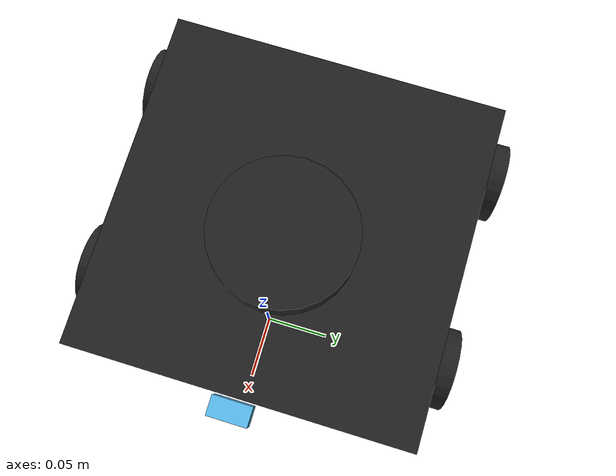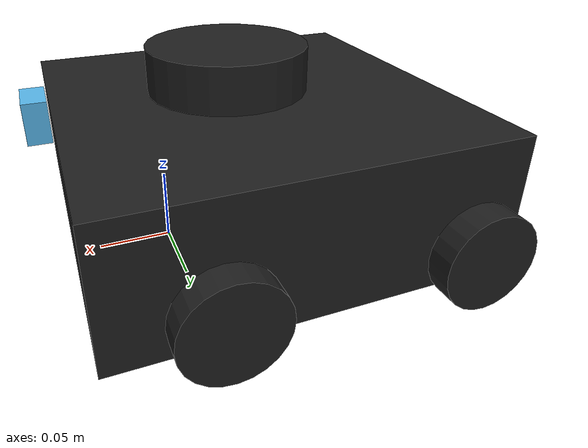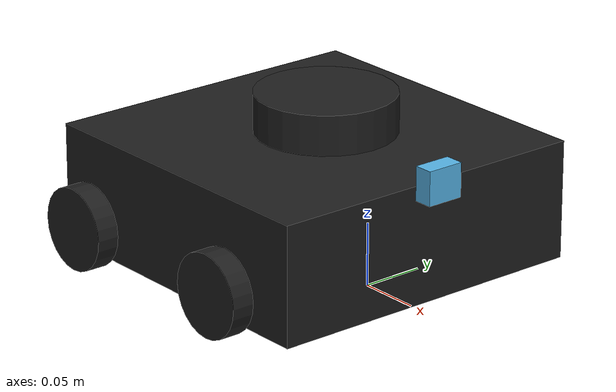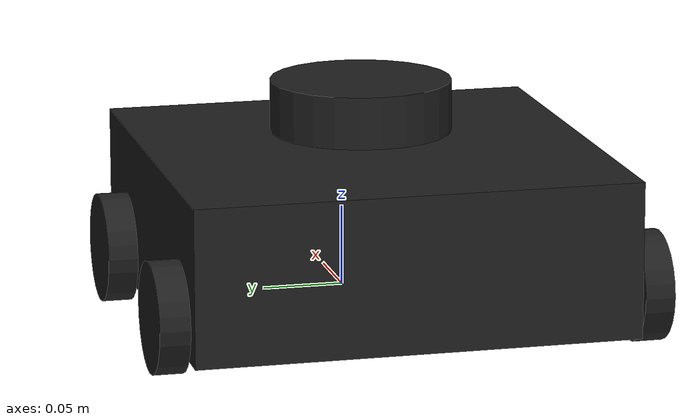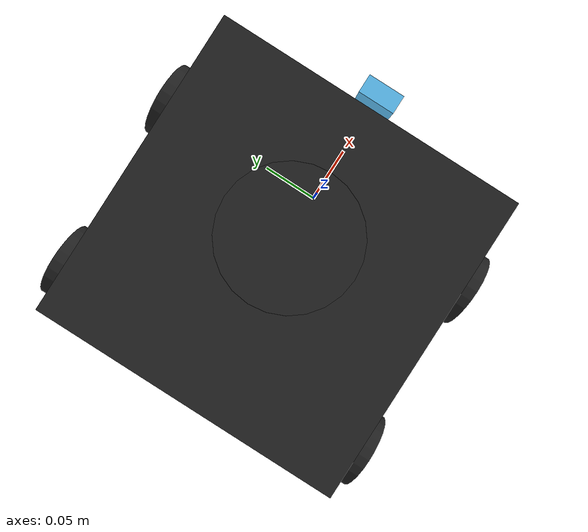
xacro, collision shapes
<?xml version="1.0" ?>

<robot name="turtlebot3_mecanum" xmlns:xacro="http://ros.org/wiki/xacro">

  <!-- Load Materials from file -->
  <xacro:include filename="$(find turtlebot3_mecanum_description)/urdf/common_properties.xacro"/>

  <!-- Load Gazebo properties -->
  <xacro:include filename="$(find turtlebot3_mecanum_description)/urdf/turtlebot3_mecanum.gazebo.xacro"/>

  <!-- Base Footprint -->
  <link name="base_footprint"/>

  <joint name="base_joint" type="fixed">
    <parent link="base_footprint"/>
    <child link="base_link" />
    <origin xyz="0 0 0.010" rpy="0 0 0"/>
  </joint>

  <!-- Base Link -->
  <link name="base_link">
    <visual>
      <origin xyz="-0.064 0 0.0" rpy="0 0 0"/>
      <geometry>
        <mesh filename="package://turtlebot3_mecanum_description/meshes/bases/waffle_pi_base.stl" scale="0.001 0.001 0.001"/>
      </geometry>
      <material name="light_black"/>
    </visual>
    <collision>
      <origin xyz="-0.064 0 0.047" rpy="0 0 0"/>
      <geometry>
        <box size="0.266 0.266 0.094"/>
      </geometry>
    </collision>
    <inertial>
      <origin xyz="0 0 0" rpy="0 0 0"/>
      <mass value="1.3729096e+00"/>
      <inertia  ixx="8.7002718e-03" ixy="-4.7576583e-05" ixz="1.1160499e-04"
                iyy="8.6195418e-03" iyz="-3.5422299e-06"
                izz="1.4612727e-02" />
    </inertial>
  </link>

  <!-- Center Link -->
  <joint name="center_joint" type="fixed">
    <parent link="base_link"/>
    <child link="center_link"/>
    <origin xyz="-0.082 0.0 0." rpy="0 0 0"/>
  </joint>
  <link name="center_link"/>

  <!-- LEFT FRONT Wheel -->
  <joint name="wheel_left_front_joint" type="continuous">
    <parent link="base_link"/>
    <child link="wheel_left_front_link"/>
    <origin xyz="0.0 0.144 0.023" rpy="-1.57 0 0"/>
    <axis xyz="0 0 1"/>
  </joint>

  <link name="wheel_left_front_link">
    <visual>
      <origin xyz="0 0 0" rpy="0.0 0 0"/>
      <geometry>
        <cylinder length="0.018" radius="0.033"/>
      </geometry>
      <material name="dark"/>
    </visual>
    <collision>
      <origin xyz="0 0 0" rpy="0 0 0"/>
      <geometry>
        <cylinder length="0.018" radius="0.033"/>
      </geometry>
    </collision>
    <inertial>
      <origin xyz="0 0 0" />
      <mass value="2.8498940e-02" />
      <inertia  ixx="1.1175580e-05" ixy="-4.2369783e-11" ixz="-5.9381719e-09"
                iyy="1.1192413e-05" iyz="-1.4400107e-11"
                izz="2.0712558e-05" />
      </inertial>
  </link>

  <!-- RIGHT FRONT Wheel -->
  <joint name="wheel_right_front_joint" type="continuous">
    <parent link="base_link"/>
    <child link="wheel_right_front_link"/>
    <origin xyz="0.0 -0.144 0.023" rpy="-1.57 0 0"/>
    <axis xyz="0 0 1"/>
  </joint>

  <link name="wheel_right_front_link">
    <visual>
      <origin xyz="0 0 0" rpy="0.0 0 0"/>
      <geometry>
        <cylinder length="0.018" radius="0.033"/>
      </geometry>
      <material name="dark"/>
    </visual>
    <collision>
      <origin xyz="0 0 0" rpy="0 0 0"/>
      <geometry>
        <cylinder length="0.018" radius="0.033"/>
      </geometry>
    </collision>
    <inertial>
      <origin xyz="0 0 0" />
      <mass value="2.8498940e-02" />
      <inertia  ixx="1.1175580e-05" ixy="-4.2369783e-11" ixz="-5.9381719e-09"
                iyy="1.1192413e-05" iyz="-1.4400107e-11"
                izz="2.0712558e-05" />
      </inertial>
  </link>

  <!-- LEFT BACK Wheel -->
  <joint name="wheel_left_rear_joint" type="continuous">
    <parent link="base_link"/>
    <child link="wheel_left_rear_link"/>
    <origin xyz="-0.163 0.144 0.023" rpy="-1.57 0 0"/>
    <axis xyz="0 0 1"/>
  </joint>

  <link name="wheel_left_rear_link">
    <visual>
      <origin xyz="0 0 0" rpy="0.0 0 0"/>
      <geometry>
        <cylinder length="0.018" radius="0.033"/>
      </geometry>
      <material name="dark"/>
    </visual>
    <collision>
      <origin xyz="0 0 0" rpy="0 0 0"/>
      <geometry>
        <cylinder length="0.018" radius="0.033"/>
      </geometry>
    </collision>
    <inertial>
      <origin xyz="0 0 0" />
      <mass value="2.8498940e-02" />
      <inertia  ixx="1.1175580e-05" ixy="-4.2369783e-11" ixz="-5.9381719e-09"
                iyy="1.1192413e-05" iyz="-1.4400107e-11"
                izz="2.0712558e-05" />
      </inertial>
  </link>

  <!-- RIGHT BACK Wheel -->
  <joint name="wheel_right_rear_joint" type="continuous">
    <parent link="base_link"/>
    <child link="wheel_right_rear_link"/>
    <origin xyz="-0.163 -0.144 0.023" rpy="-1.57 0 0"/>
    <axis xyz="0 0 1"/>
  </joint>

  <link name="wheel_right_rear_link">
    <visual>
      <origin xyz="0 0 0" rpy="0.0 0 0"/>
      <geometry>
        <cylinder length="0.018" radius="0.033"/>
      </geometry>
      <material name="dark"/>
    </visual>
    <collision>
      <origin xyz="0 0 0" rpy="0 0 0"/>
      <geometry>
        <cylinder length="0.018" radius="0.033"/>
      </geometry>
    </collision>
    <inertial>
      <origin xyz="0 0 0" />
      <mass value="2.8498940e-02" />
      <inertia  ixx="1.1175580e-05" ixy="-4.2369783e-11" ixz="-5.9381719e-09"
                iyy="1.1192413e-05" iyz="-1.4400107e-11"
                izz="2.0712558e-05" />
      </inertial>
  </link>

  <!-- IMU -->
  <joint name="imu_joint" type="fixed">
    <parent link="base_link"/>
    <child link="imu_link"/>
    <origin xyz="0.0 0 0.068" rpy="0 0 0"/>
  </joint>

  <link name="imu_link"/>

  <!-- LASER SCAN-->
  <joint name="scan_joint" type="fixed">
    <parent link="base_link"/>
    <child link="base_scan"/>
    <origin xyz="-0.064 0 0.122" rpy="0 0 0"/>
  </joint>

  <link name="base_scan">
    <visual>
      <origin xyz="0 0 0.0" rpy="0 0 0"/>
      <geometry>
        <mesh filename="package://turtlebot3_mecanum_description/meshes/sensors/lds.stl" scale="0.001 0.001 0.001"/>
      </geometry>
      <material name="dark"/>
    </visual>
    <collision>
      <origin xyz="0.015 0 -0.0065" rpy="0 0 0"/>
      <geometry>
        <cylinder length="0.0315" radius="0.055"/>
      </geometry>
    </collision>
    <inertial>
      <mass value="0.114" />
      <origin xyz="0 0 0" />
      <inertia  ixx="0.001" ixy="0.0" ixz="0.0"
                iyy="0.001" iyz="0.0"
                izz="0.001" />
    </inertial>
  </link>

  <!-- CAMERA -->
  <joint name="camera_joint" type="fixed">
    <origin xyz="0.073 -0.011 0.084" rpy="0 0 0"/>
    <parent link="base_link"/>
    <child link="camera_link"/>
  </joint>

  <link name="camera_link">
    <collision>
      <origin xyz="0.005 0.011 0.013" rpy="0 0 0"/>
      <geometry>
        <box size="0.015 0.030 0.027"/>
      </geometry>
    </collision>
  </link>

  <joint name="camera_rgb_joint" type="fixed">
    <origin xyz="0.003 0.011 0.009" rpy="0 0 0"/>
    <parent link="camera_link"/>
    <child link="camera_rgb_frame"/>
  </joint>
  <link name="camera_rgb_frame"/>

  <joint name="camera_rgb_optical_joint" type="fixed">
    <origin xyz="0 0 0" rpy="-1.57 0 -1.57"/>
    <parent link="camera_rgb_frame"/>
    <child link="camera_rgb_optical_frame"/>
  </joint>
  <link name="camera_rgb_optical_frame"/>

</robot>
